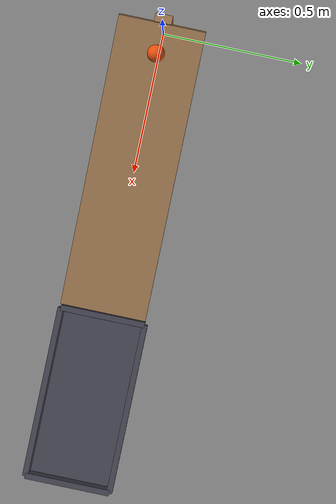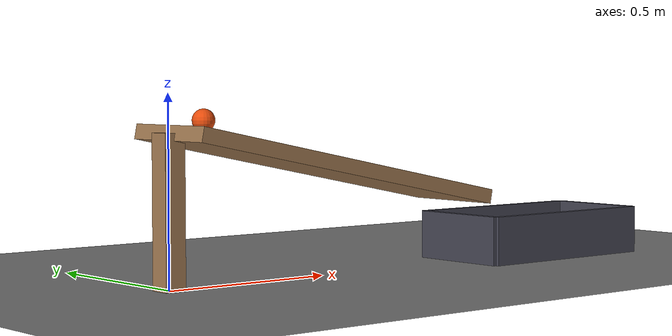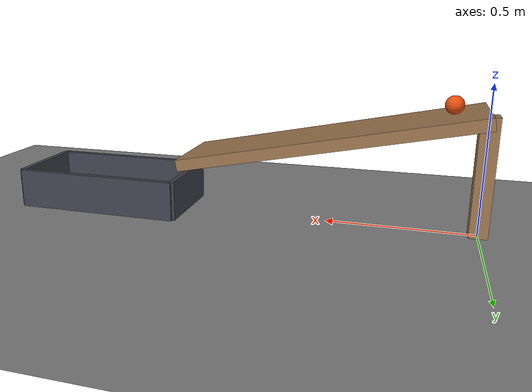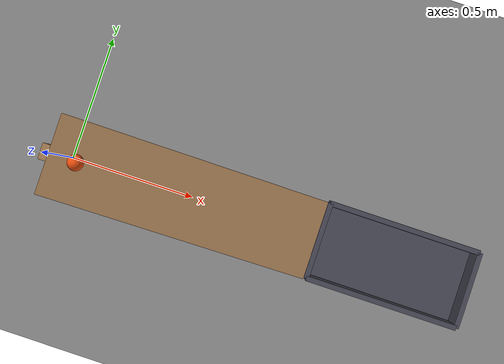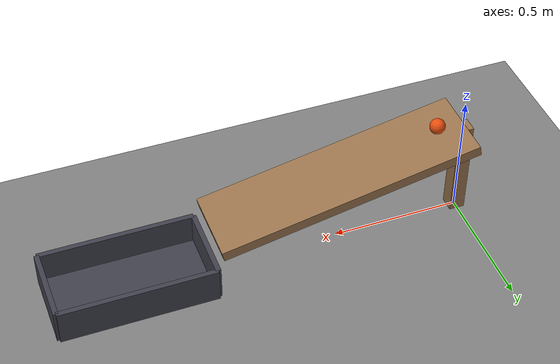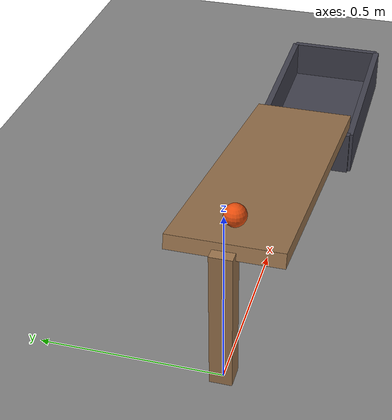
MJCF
<mujoco model="ball_down_a_ramp_into_a_cup">
  <compiler angle="radian"/>
  <option timestep="0.002"/>
  <worldbody>
    <geom name="floor" type="plane" size="8 8 0.1" friction="0.8 0.005 0.002"/>
    <body name="ramp">
      <geom name="ramp_deck" type="box" pos="0.5 0 0.3" size="0.509902 0.15 0.02" euler="0 0.197396 0" friction="0.8 0.001 0.0005" rgba="0.6 0.45 0.3 1"/>
      <geom name="ramp_leg" type="box" pos="0 0 0.2" size="0.03 0.03 0.2" friction="0.8 0.001 0.0005" rgba="0.6 0.45 0.3 1"/>
    </body>
    <body name="cup">
      <geom name="cup_base" type="box" pos="1.32 0 0.01" size="0.3 0.15 0.01" friction="0.9 0.02 0.02" solref="0.01 1" rgba="0.25 0.25 0.3 1"/>
      <geom name="cup_near_wall" type="box" pos="1.02 0 0.07" size="0.01 0.15 0.07" friction="0.9 0.02 0.02" solref="0.01 1" rgba="0.25 0.25 0.3 1"/>
      <geom name="cup_far_wall" type="box" pos="1.62 0 0.07" size="0.01 0.15 0.07" friction="0.9 0.02 0.02" solref="0.01 1" rgba="0.25 0.25 0.3 1"/>
      <geom name="cup_left_wall" type="box" pos="1.32 0.15 0.07" size="0.3 0.01 0.07" friction="0.9 0.02 0.02" solref="0.01 1" rgba="0.25 0.25 0.3 1"/>
      <geom name="cup_right_wall" type="box" pos="1.32 -0.15 0.07" size="0.3 0.01 0.07" friction="0.9 0.02 0.02" solref="0.01 1" rgba="0.25 0.25 0.3 1"/>
    </body>
    <body name="ball" pos="0.107864 0 0.429417">
      <freejoint/>
      <geom name="ball" type="sphere" pos="0 0 0" size="0.03" mass="0.1" condim="6" friction="0.8 0.002 0.001" solref="0.01 1" rgba="0.9 0.3 0.05 1"/>
    </body>
  </worldbody>
  <keyframe>
    <key name="start" qpos="0.107864 0 0.429417 1 0 0 0" qvel="0 0 0 0 0 0"/>
  </keyframe>
</mujoco>
